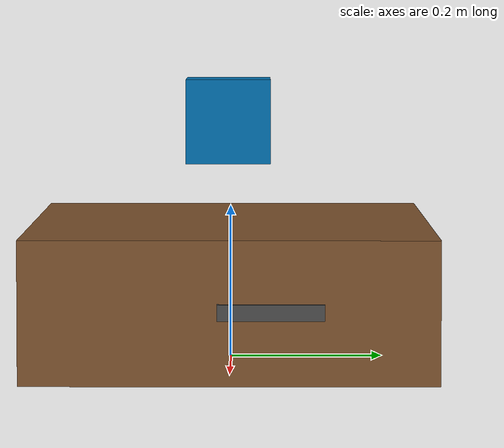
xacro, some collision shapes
<?xml version="1.0"?>
<robot xmlns:sensor="http://playerstage.sourceforge.net/gazebo/xmlschema/#sensor"
       xmlns:controller="http://playerstage.sourceforge.net/gazebo/xmlschema/#controller"
       xmlns:interface="http://playerstage.sourceforge.net/gazebo/xmlschema/#interface"
       xmlns:xacro="http://ros.org/wiki/xacro">

    <xacro:include filename="$(find tinker_description)/urdf/base/base.gazebo.xacro"/>
    <xacro:include filename="$(find tinker_description)/urdf/sensor/hokuyo_lx30_laser.urdf.xacro"/>
    <xacro:include filename="$(find hector_sensors_description)/urdf/realsense_camera.urdf.xacro"/>

    <xacro:property name="base_length" value="0.64"/>
    <xacro:property name="base_width" value="0.52"/>
    <xacro:property name="base_height" value="0.18"/>

    <xacro:property name="base_laser_x" value="0.30"/>
    <xacro:property name="base_laser_y" value="0"/>
    <xacro:property name="base_laser_z" value="0.25"/>

    <xacro:property name="front_primesense_x" value="0.40"/>
    <xacro:property name="front_primesense_y" value="0"/>
    <xacro:property name="front_primesense_z" value="0.1"/>

    <xacro:property name="back_xtion_x" value="-0.30"/>
    <xacro:property name="back_xtion_y" value="0"/>
    <xacro:property name="back_xtion_z" value="0.1"/>

    <!--*****************chasiss***********************-->
    <link name="virtual_x_link">
        <inertial>
            <mass value="1"/>
            <inertia ixx="0.1" ixy="0.1" ixz="0.1" iyy="0.1" iyz="0.1" izz="0.1"/>
        </inertial>
    </link>
    <joint name="virtual_x_joint" type="prismatic">
        <parent link="virtual_x_link" />
        <child link="virtual_y_link" />
        <origin rpy="0 0 0" />
        <limit lower="-1000" upper="1000" velocity="0.2" effort="10000"/>
    </joint>

    <link name="virtual_y_link">
        <inertial>
            <mass value="1"/>
            <inertia ixx="0.1" ixy="0.1" ixz="0.1" iyy="0.1" iyz="0.1" izz="0.1"/>
        </inertial>
    </link>
    <joint name="virtual_y_joint" type="prismatic">
        <parent link="virtual_y_link" />
        <child link="virtual_yaw_link" />
        <origin rpy="0 0 0" />
        <axis xyz="0 1 0" />
        <limit lower="-1000" upper="1000" velocity="0.2" effort="10000"/>
    </joint>

    <link name="virtual_yaw_link">
        <inertial>
            <mass value="1"/>
            <inertia ixx="0.1" ixy="0.1" ixz="0.1" iyy="0.1" iyz="0.1" izz="0.1"/>
        </inertial>
    </link>
    <joint name="virtual_yaw_joint" type="continuous">
        <parent link="virtual_yaw_link" />
        <child link="base_link" />
        <origin rpy="0 0 0" />
        <axis xyz="0 0 1" />
        <limit velocity="0.2" effort="10000"/>
    </joint>

    <link name="base_link">
        <visual>
            <geometry>
                <box size="${base_length} ${base_width} ${base_height}"/>
            </geometry>
            <origin xyz="0 0 ${base_height/2}"/>
            <material name="brown"/>
        </visual>

        <collision>
            <geometry>
                <box size="${base_length} ${base_width} ${base_height}"/>
            </geometry>
            <origin xyz="0 0 ${base_height/2}"/>
        </collision>

        <inertial>
            <origin xyz="0 0 ${base_height/2}"/>
            <mass value="1"/>
            <inertia ixx="0.1" ixy="0.1" ixz="0.1" iyy="0.1" iyz="0.1" izz="0.1"/>
        </inertial>
    </link>

    <xacro:hokuyo_lx30_laser_v0 name="base_laser" parent="base" ros_topic="scan" update_rate="20"
                                min_angle="${-3*M_PI/4}" max_angle="${3*M_PI/4}">
        <origin xyz="${base_laser_x} ${base_laser_y} ${base_laser_z}" rpy="0 0 0"/>
    </xacro:hokuyo_lx30_laser_v0>

    <xacro:realsense_camera name="primesense_front" parent="base_link">
        <origin xyz="${front_primesense_x} ${front_primesense_y} ${front_primesense_z}" rpy="0 0 0"/>
    </xacro:realsense_camera>

    <xacro:realsense_camera name="xtion_back" parent="base_link">
        <origin xyz="${back_xtion_x} ${back_xtion_y} ${back_xtion_z}" rpy="0 0 ${M_PI}"/>
    </xacro:realsense_camera>
</robot>

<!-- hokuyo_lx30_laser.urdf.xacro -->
<robot xmlns:sensor="http://playerstage.sourceforge.net/gazebo/xmlschema/#sensor"
       xmlns:controller="http://playerstage.sourceforge.net/gazebo/xmlschema/#controller"
       xmlns:interface="http://playerstage.sourceforge.net/gazebo/xmlschema/#interface"
       xmlns:xacro="http://ros.org/wiki/xacro">

    <xacro:include filename="$(find tinker_description)/urdf/sensor/hokuyo_lx30_laser.gazebo.xacro"/>

    <xacro:macro name="hokuyo_lx30_laser_v0" params="name parent *origin ros_topic update_rate min_angle max_angle">
        <joint name="${name}_joint" type="fixed">
            <axis xyz="0 1 0"/>
            <insert_block name="origin"/>
            <parent link="${parent}_link"/>
            <child link="${name}_link"/>
        </joint>
        <link name="${name}_link" type="laser">
            <visual>
                <geometry>
                    <!--box size=".04 .04 .05"/-->
                    <mesh filename="package://tinker_description/meshes/hokuyo.dae"/>
                </geometry>
            </visual>
            <collision>
                <origin xyz="0.08 0 0.08"/>
                <geometry>
                    <box size="0.1 0.1 0.1"/>
                </geometry>
            </collision>
            <inertial>
                <mass value="0.001"/>
                <origin xyz="0 0 0" rpy="0 0 0"/>
                <inertia ixx="0.0001" ixy="0" ixz="0" iyy="0.000001" iyz="0" izz="0.0001"/>
            </inertial>
        </link>
        <!-- gazebo extensions -->
        <xacro:hokuyo_lx30_laser_gazebo_v0 name="${name}" ros_topic="${ros_topic}" update_rate="${update_rate}"
                                           min_angle="${min_angle}" max_angle="${max_angle}"/>
    </xacro:macro>
</robot>

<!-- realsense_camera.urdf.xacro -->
<robot xmlns:xacro="http://www.ros.org/wiki/xacro">
    <xacro:property name="M_PI" value="3.1415926535897931" />

    <!--
     This macro only adds the model, it does not also add
     the openni gazebo plugin. See the 'asus_camera' macro below for that
    -->
    <xacro:macro name="realsense_camera_model" params="name parent *origin">
      <joint name="${name}_joint" type="fixed">
        <xacro:insert_block name="origin" />
        <parent link="${parent}"/>
        <child link="${name}_link"/>
      </joint>

      <link name="${name}_link">
        <inertial>
          <mass value="0.200" />
          <origin xyz="0 0 0" rpy="0 0 0" />
          <inertia ixx="5.8083e-4" ixy="0" ixz="0" iyy="3.0833e-5" iyz="0" izz="5.9083e-4" />
        </inertial>
        <visual>
          <origin xyz="0 0.051 0" rpy="0 0 0" />
          <geometry>
            <!--Dimensions taken from https://software.intel.com/en-us/realsense/devkit-->
            <box size="0.007 0.130 0.02" />
          </geometry>
          <material name="DarkGrey">
            <color rgba="0.3 0.3 0.3 1"/>
          </material>
        </visual>
        <collision>
          <origin xyz="0 0.051 0" rpy="0 0 0" />
          <geometry>
            <!--Dimensions taken from https://software.intel.com/en-us/realsense/devkit-->
            <box size="0.007 0.130 0.02" />
          </geometry>
        </collision>
      </link>

      <gazebo reference="${name}_link">
        <material>Gazebo/Grey</material>
      </gazebo>
    </xacro:macro>

    <xacro:macro name="realsense_camera_model_no_geom" params="name parent *origin">
      <joint name="${name}_joint" type="fixed">
        <xacro:insert_block name="origin" />
        <parent link="${parent}"/>
        <child link="${name}_link"/>
      </joint>

      <link name="${name}_link">
      </link>
    </xacro:macro>

    <xacro:macro name="realsense_camera_gazebo_plugin_macro" params="name parent image_topic depth_points_topic min_range max_range update_rate">
      <gazebo reference="${name}_link">
        <sensor type="depth" name="${name}">
          <update_rate>${update_rate}</update_rate>
          <camera>
            <horizontal_fov>${53.35 * M_PI/180.0}</horizontal_fov>
            <image>
              <format>B8G8R8</format>
              <width>640</width>
              <height>480</height>
            </image>
            <clip>
              <near>${min_range}</near>
              <far>${max_range}</far>
            </clip>
          </camera>
          <plugin name="${name}_camera_controller" filename="libgazebo_ros_openni_kinect.so">
            <cameraName>${name}</cameraName>
            <imageTopicName>rgb/${image_topic}</imageTopicName>
            <cameraInfoTopicName>rgb/camera_info</cameraInfoTopicName>
            <depthImageTopicName>depth/image_raw</depthImageTopicName>
            <depthImageCameraInfoTopicName>depth/camera_info</depthImageCameraInfoTopicName>
            <pointCloudTopicName>${depth_points_topic}</pointCloudTopicName>
            <frameName>${name}_depth_optical_frame</frameName>
          </plugin>
        </sensor>
      </gazebo>
    </xacro:macro>

    <!--
      Use the macro below for adding the realsense model with link geometry
    -->
    <xacro:macro name="realsense_camera" params="name parent *origin">
      <xacro:realsense_camera_model name="${name}" parent="${parent}">
        <xacro:insert_block name="origin" />
      </xacro:realsense_camera_model>

      <xacro:realsense_camera_gazebo_plugin_macro name="${name}" parent="${parent}" image_topic="image_raw" depth_points_topic="depth/points" min_range="0.3" max_range="9.0" update_rate="20"/>
    </xacro:macro>

    <!--
      Use the macro below for adding the realsense model without link geometry,
      e.g. if the sensor is added into preexisting geometry
    -->
    <xacro:macro name="realsense_camera_no_geom" params="name parent *origin">
      <xacro:realsense_camera_model_no_geom name="${name}" parent="${parent}">
        <xacro:insert_block name="origin" />
      </xacro:realsense_camera_model_no_geom>

      <xacro:realsense_camera_gazebo_plugin_macro name="${name}" parent="${parent}" image_topic="rgb/image_raw" depth_points_topic="depth/points" min_range="0.3" max_range="9.0" update_rate="20"/>
    </xacro:macro>

    <xacro:macro name="realsense_camera_no_geom_comprehensive_params" params="name parent *origin image_topic depth_points_topic min_range max_range update_rate">
      <xacro:realsense_camera_model_no_geom name="${name}" parent="${parent}">
        <xacro:insert_block name="origin" />
      </xacro:realsense_camera_model_no_geom>

      <xacro:realsense_camera_gazebo_plugin_macro name="${name}" parent="${parent}" image_topic="${image_topic}" depth_points_topic="${depth_points_topic}" min_range="${min_range}" max_range="${max_range}" update_rate="${update_rate}"/>
    </xacro:macro>

    <xacro:macro name="realsense_camera_comprehensive_params" params="name parent *origin image_topic depth_points_topic min_range max_range update_rate">
      <xacro:realsense_camera_model name="${name}" parent="${parent}">
        <xacro:insert_block name="origin" />
      </xacro:realsense_camera_model>

      <xacro:realsense_camera_gazebo_plugin_macro name="${name}" parent="${parent}" image_topic="${image_topic}" depth_points_topic="${depth_points_topic}" min_range="${min_range}" max_range="${max_range}" update_rate="${update_rate}"/>
    </xacro:macro>

  </robot>
